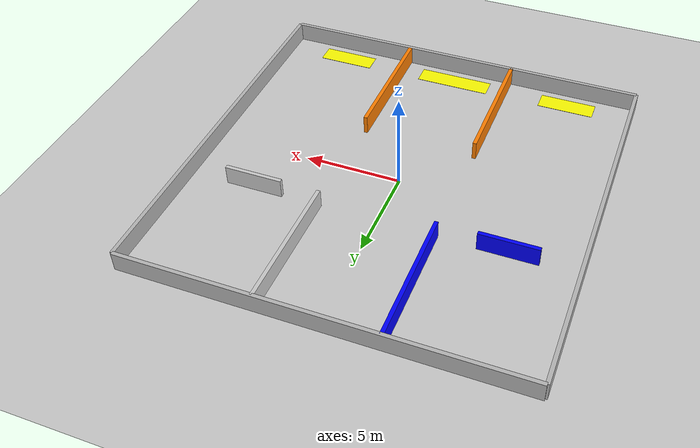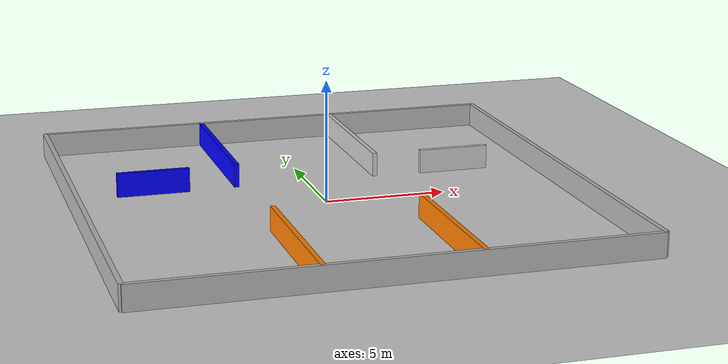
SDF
<?xml version="1.0" ?>
<sdf version="1.6">
  <world name="kilang_layout">
    <include><uri>model://sun</uri></include>
    <include><uri>model://ground_plane</uri></include>

    <model name='factory_structure'>
      <static>true</static>

      <link name='outer_border'>
        <visual name='v_n'><pose>0 10 0.5 0 0 0</pose><geometry><box><size>20 0.2 1</size></box></geometry></visual>
        <collision name='c_n'><pose>0 10 0.5 0 0 0</pose><geometry><box><size>20 0.2 1</size></box></geometry></collision>

        <visual name='v_s'><pose>0 -10 0.5 0 0 0</pose><geometry><box><size>20 0.2 1</size></box></geometry></visual>
        <collision name='c_s'><pose>0 -10 0.5 0 0 0</pose><geometry><box><size>20 0.2 1</size></box></geometry></collision>

        <visual name='v_e'><pose>10 0 0.5 0 0 0</pose><geometry><box><size>0.2 20 1</size></box></geometry></visual>
        <collision name='c_e'><pose>10 0 0.5 0 0 0</pose><geometry><box><size>0.2 20 1</size></box></geometry></collision>

        <visual name='v_w'><pose>-10 0 0.5 0 0 0</pose><geometry><box><size>0.2 20 1</size></box></geometry></visual>
        <collision name='c_w'><pose>-10 0 0.5 0 0 0</pose><geometry><box><size>0.2 20 1</size></box></geometry></collision>
      </link>

      <link name='robot_storage'>
        <visual name='wall_inner'><pose>-3 6.5 0.5 0 0 0</pose><geometry><box><size>0.2 7 1</size></box></geometry><material><ambient>0 0 1 1</ambient></material></visual>
        <collision name='c_inner'><pose>-3 6.5 0.5 0 0 0</pose><geometry><box><size>0.2 7 1</size></box></geometry></collision>

        <visual name='wall_bottom_1'><pose>-6.5 3 0.5 0 0 0</pose><geometry><box><size>3 0.2 1</size></box></geometry><material><ambient>0 0 1 1</ambient></material></visual>
        <collision name='c_bottom'><pose>-6.5 3 0.5 0 0 0</pose><geometry><box><size>3 0.2 1</size></box></geometry></collision>
      </link>

      <link name='raw_material'>
        <visual name='wall_inner'><pose>3 6.5 0.5 0 0 0</pose><geometry><box><size>0.2 7 1</size></box></geometry><material><ambient>0.8 0.8 0.8 1</ambient></material></visual>
        <collision name='c_inner'><pose>3 6.5 0.5 0 0 0</pose><geometry><box><size>0.2 7 1</size></box></geometry></collision>

        <visual name='wall_bottom_1'><pose>6.5 3 0.5 0 0 0</pose><geometry><box><size>3 0.2 1</size></box></geometry><material><ambient>0.8 0.8 0.8 1</ambient></material></visual>
        <collision name='c_bottom'><pose>6.5 3 0.5 0 0 0</pose><geometry><box><size>3 0.2 1</size></box></geometry></collision>
      </link>

      <link name='cnc_machining'>
        <visual name='wall_inner'><pose>-3 -6.5 0.5 0 0 0</pose><geometry><box><size>0.2 7 1</size></box></geometry><material><ambient>1 0.5 0 1</ambient></material></visual>
        <collision name='c_inner'><pose>-3 -6.5 0.5 0 0 0</pose><geometry><box><size>0.2 7 1</size></box></geometry></collision>
      </link>

      <link name='final_product'>
        <visual name='wall_inner'><pose>3 -6.5 0.5 0 0 0</pose><geometry><box><size>0.2 7 1</size></box></geometry><material><ambient>1 0.5 0 1</ambient></material></visual>
        <collision name='c_inner'><pose>3 -6.5 0.5 0 0 0</pose><geometry><box><size>0.2 7 1</size></box></geometry></collision>
      </link>

      <link name='markers'>
        <visual name='top_left'><pose>-6.5 -9 0.01 0 0 0</pose><geometry><box><size>3 1 0.01</size></box></geometry><material><ambient>1 1 0 1</ambient></material></visual>
        <visual name='middle'><pose>0 -9 0.01 0 0 0</pose><geometry><box><size>4 1 0.01</size></box></geometry><material><ambient>1 1 0 1</ambient></material></visual>
        <visual name='bot_left'><pose>6.5 -9 0.01 0 0 0</pose><geometry><box><size>3 1 0.01</size></box></geometry><material><ambient>1 1 0 1</ambient></material></visual>
      </link>

    </model>
  </world>
</sdf>
